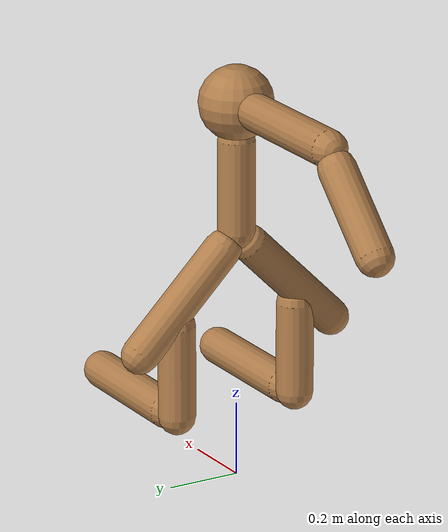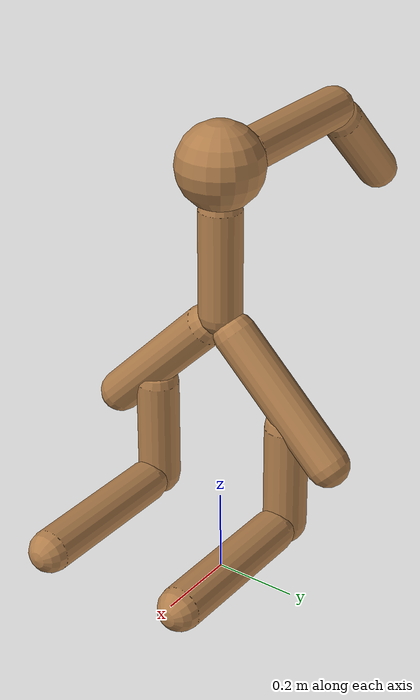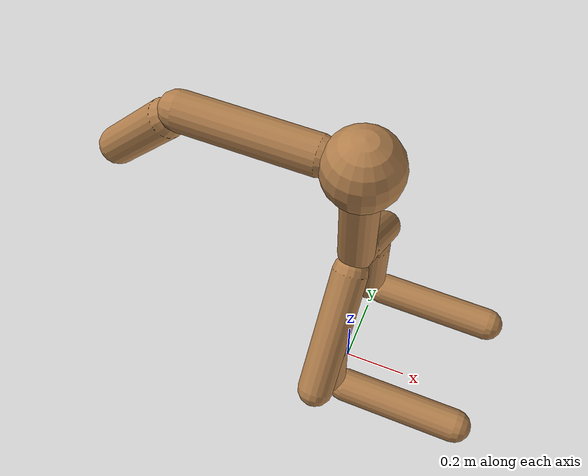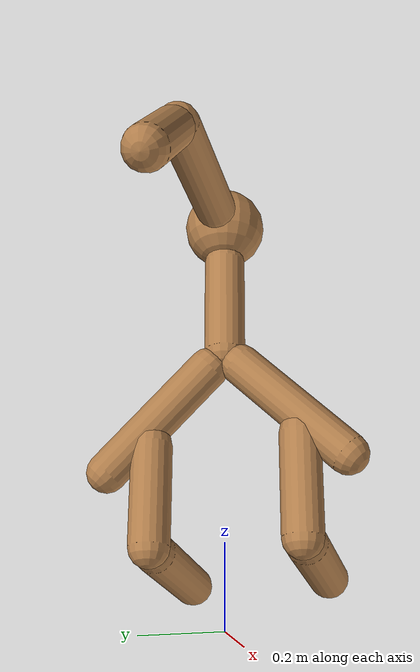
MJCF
<?xml version='1.0' encoding='UTF-8'?>
<!-- Universal Animal Template: unimal -->
<mujoco model="unimal">
  <compiler angle="degree"/>
  <size njmax="2000" nconmax="500"/>
  <option timestep=".005">
    <flag filterparent="disable"/>
  </option>
  <!-- Common defaults to make search space tractable -->
  <default>
    <!-- Define motor defaults -->
    <motor ctrlrange="-1 1" ctrllimited="true"/>
    <!-- Define joint defaults -->
    <default class="normal_joint">
      <joint type="hinge" damping="1" stiffness="1" armature="1" limited="true" range="-120 120" solimplimit="0 0.99 0.01"/>
    </default>
    <default class="walker_joint">
      <joint type="hinge" damping="0.2" stiffness="1" armature=".01" limited="true" range="-120 120" solimplimit="0 0.99 0.01"/>
    </default>
    <default class="stiff_joint">
      <joint type="hinge" damping="5" stiffness="10" armature=".01" limited="true" solimplimit="0 0.99 0.01"/>
    </default>
    <default class="free">
      <joint limited="false" damping="0" armature="0" stiffness="0"/>
    </default>
    <default class="growth_site">
      <site size="1e-6 1e-6 1e-6"/>
    </default>
    <default class="torso_growth_site">
      <site size="1e-6 1e-6 1e-6"/>
    </default>
    <default class="mirror_growth_site">
      <site size="1e-6 1e-6 1e-6"/>
    </default>
    <default class="btm_pos_site">
      <site size="1e-6 1e-6 1e-6"/>
    </default>
    <default class="box_face_site">
      <site size="1e-6 1e-6 1e-6"/>
    </default>
    <default class="imu_vel">
      <site type="box" size="0.05" rgba="1 0 0 0"/>
    </default>
    <default class="touch_site">
      <site group="3" rgba="0 0 1 .3"/>
    </default>
    <default class="food_site">
      <site material="food" size="0.15"/>
    </default>
    <!-- Define geom defaults -->
    <geom type="capsule" condim="3" friction="0.7 0.1 0.1" material="self"/>
  </default>
  <worldbody>
    <light diffuse="1 1 1" directional="true" exponent="1" pos="0 0 8" specular="0.1 0.1 0.1" dir="0 0 -1"/>
    <!-- Programatically generated xml goes here -->
    <body name="torso/0" pos="0 0 1.03">
      <joint name="root" type="free" class="free"/>
      <site name="root" class="imu_vel"/>
      <geom name="torso/0" type="sphere" size="0.1" condim="3" density="1000"/>
      <camera name="side" pos="0 -7 2" xyaxes="1 0 0 0 1 2" mode="trackcom"/>
      <site name="torso/0" class="growth_site" pos="0 0 0"/>
      <site name="torso/btm_pos/0" class="btm_pos_site" pos="0 0 -0.1"/>
      <site name="torso/touch/0" class="touch_site" size="0.11"/>
      <site name="torso/vertical/0" class="torso_growth_site" pos="0 0 -0.1"/>
      <body name="limb/43" pos="-0.1 0.0 0.0">
        <joint name="limby/43" type="hinge" class="normal_joint" range="-30 30" pos="0.05 0.0 0.0" axis="0.0 1.0 0.0"/>
        <geom name="limb/43" type="capsule" fromto="0.0 0.0 0.0 -0.35 0.0 0.0" size="0.05" density="500"/>
        <site name="limb/mid/43" class="growth_site" pos="-0.2 0.0 0.0"/>
        <site name="limb/btm/43" class="growth_site" pos="-0.35 0.0 0.0"/>
        <site name="limb/btm_pos/43" class="btm_pos_site" pos="-0.35 0.0 0.0"/>
        <site name="limb/touch/43" class="touch_site" size="0.060000000000000005" fromto="0.0 0.0 0.0 -0.35 0.0 0.0" type="capsule"/>
        <body name="limb/57" pos="-0.38999999999999996 0.0 -0.04">
          <joint name="limbx/57" type="hinge" class="normal_joint" range="-45 45" pos="0.04 0.0 0.04" axis="0.7071 0.0 -0.7071"/>
          <joint name="limby/57" type="hinge" class="normal_joint" range="-30 60" pos="0.04 0.0 0.04" axis="0.0 1.0 0.0"/>
          <geom name="limb/57" type="capsule" fromto="0.0 0.0 0.0 -0.18 0.0 -0.18" size="0.05" density="500"/>
          <site name="limb/mid/57" class="growth_site" pos="-0.11 0.0 -0.11"/>
          <site name="limb/btm/57" class="growth_site" pos="-0.18 0.0 -0.18"/>
          <site name="limb/btm_pos/57" class="btm_pos_site" pos="-0.21 0.0 -0.21"/>
          <site name="limb/touch/57" class="touch_site" size="0.060000000000000005" fromto="0.0 0.0 0.0 -0.18 0.0 -0.18" type="capsule"/>
        </body>
      </body>
      <body name="limb/54" pos="0.0 0.0 -0.1">
        <joint name="limby/54" type="hinge" class="normal_joint" range="-30 60" pos="0.0 0.0 0.05" axis="0.0 1.0 0.0"/>
        <geom name="limb/54" type="capsule" fromto="0.0 0.0 0.0 0.0 0.0 -0.25" size="0.05" density="500"/>
        <site name="limb/mid/54" class="growth_site" pos="0.0 0.0 -0.15"/>
        <site name="limb/btm/54" class="growth_site" pos="0.0 0.0 -0.25"/>
        <site name="limb/btm_pos/54" class="btm_pos_site" pos="0.0 0.0 -0.25"/>
        <site name="limb/touch/54" class="touch_site" size="0.060000000000000005" fromto="0.0 0.0 0.0 0.0 0.0 -0.25" type="capsule"/>
        <body name="limb/55" pos="0.0 0.04 -0.29">
          <joint name="limby/55" type="hinge" class="normal_joint" range="0 60" pos="0.0 -0.04 0.04" axis="0.0 0.7071 0.7071"/>
          <geom name="limb/55" type="capsule" fromto="0.0 0.0 0.0 0.0 0.25 -0.25" size="0.05" density="500"/>
          <site name="limb/mid/55" class="mirror_growth_site" pos="0.0 0.14 -0.14"/>
          <site name="limb/btm/55" class="mirror_growth_site" pos="0.0 0.25 -0.25"/>
          <site name="limb/btm_pos/55" class="btm_pos_site" pos="0.0 0.25 -0.25"/>
          <site name="limb/touch/55" class="touch_site" size="0.060000000000000005" fromto="0.0 0.0 0.0 0.0 0.25 -0.25" type="capsule"/>
          <body name="limb/58" pos="0.0 0.14 -0.19">
            <joint name="limbx/58" type="hinge" class="normal_joint" range="-60 60" pos="0.0 0.0 0.05" axis="1.0 0.0 0.0"/>
            <joint name="limby/58" type="hinge" class="normal_joint" range="0 60" pos="0.0 0.0 0.05" axis="0.0 1.0 0.0"/>
            <geom name="limb/58" type="capsule" fromto="0.0 0.0 0.0 0.0 0.0 -0.25" size="0.05" density="500"/>
            <site name="limb/mid/58" class="mirror_growth_site" pos="0.0 0.0 -0.15"/>
            <site name="limb/btm/58" class="mirror_growth_site" pos="0.0 0.0 -0.25"/>
            <site name="limb/btm_pos/58" class="btm_pos_site" pos="0.0 0.0 -0.25"/>
            <site name="limb/touch/58" class="touch_site" size="0.060000000000000005" fromto="0.0 0.0 0.0 0.0 0.0 -0.25" type="capsule"/>
            <body name="limb/60" pos="0.05 0.0 -0.25">
              <joint name="limbx/60" type="hinge" class="normal_joint" range="0 60" pos="-0.05 0.0 0.0" axis="0.0 0.0 1.0"/>
              <joint name="limby/60" type="hinge" class="normal_joint" range="-60 60" pos="-0.05 0.0 0.0" axis="-0.0 1.0 0.0"/>
              <geom name="limb/60" type="capsule" fromto="0.0 0.0 0.0 0.35 0.0 0.0" size="0.05" density="500"/>
              <site name="limb/mid/60" class="mirror_growth_site" pos="0.2 0.0 0.0"/>
              <site name="limb/btm/60" class="mirror_growth_site" pos="0.35 0.0 0.0"/>
              <site name="limb/btm_pos/60" class="btm_pos_site" pos="0.4 0.0 0.0"/>
              <site name="limb/touch/60" class="touch_site" size="0.060000000000000005" fromto="0.0 0.0 0.0 0.35 0.0 0.0" type="capsule"/>
            </body>
          </body>
        </body>
        <body name="limb/56" pos="0.0 -0.04 -0.29">
          <joint name="limby/56" type="hinge" class="normal_joint" range="0 60" pos="0.0 0.04 0.04" axis="-0.0 0.7071 -0.7071"/>
          <geom name="limb/56" type="capsule" fromto="0.0 0.0 0.0 0.0 -0.25 -0.25" size="0.05" density="500"/>
          <site name="limb/mid/56" class="mirror_growth_site" pos="0.0 -0.14 -0.14"/>
          <site name="limb/btm/56" class="mirror_growth_site" pos="0.0 -0.25 -0.25"/>
          <site name="limb/btm_pos/56" class="btm_pos_site" pos="0.0 -0.25 -0.25"/>
          <site name="limb/touch/56" class="touch_site" size="0.060000000000000005" fromto="0.0 0.0 0.0 0.0 -0.25 -0.25" type="capsule"/>
          <body name="limb/59" pos="0.0 -0.14 -0.19">
            <joint name="limbx/59" type="hinge" class="normal_joint" range="-60 60" pos="0.0 0.0 0.05" axis="1.0 0.0 0.0"/>
            <joint name="limby/59" type="hinge" class="normal_joint" range="0 60" pos="0.0 0.0 0.05" axis="0.0 1.0 0.0"/>
            <geom name="limb/59" type="capsule" fromto="0.0 0.0 0.0 0.0 0.0 -0.25" size="0.05" density="500"/>
            <site name="limb/mid/59" class="mirror_growth_site" pos="0.0 0.0 -0.15"/>
            <site name="limb/btm/59" class="mirror_growth_site" pos="0.0 0.0 -0.25"/>
            <site name="limb/btm_pos/59" class="btm_pos_site" pos="0.0 0.0 -0.25"/>
            <site name="limb/touch/59" class="touch_site" size="0.060000000000000005" fromto="0.0 0.0 0.0 0.0 0.0 -0.25" type="capsule"/>
            <body name="limb/61" pos="0.05 0.0 -0.25">
              <joint name="limbx/61" type="hinge" class="normal_joint" range="0 60" pos="-0.05 0.0 0.0" axis="0.0 0.0 1.0"/>
              <joint name="limby/61" type="hinge" class="normal_joint" range="-60 60" pos="-0.05 0.0 0.0" axis="-0.0 1.0 0.0"/>
              <geom name="limb/61" type="capsule" fromto="0.0 0.0 0.0 0.35 0.0 0.0" size="0.05" density="500"/>
              <site name="limb/mid/61" class="mirror_growth_site" pos="0.2 0.0 0.0"/>
              <site name="limb/btm/61" class="mirror_growth_site" pos="0.35 0.0 0.0"/>
              <site name="limb/btm_pos/61" class="btm_pos_site" pos="0.4 0.0 0.0"/>
              <site name="limb/touch/61" class="touch_site" size="0.060000000000000005" fromto="0.0 0.0 0.0 0.35 0.0 0.0" type="capsule"/>
            </body>
          </body>
        </body>
      </body>
    </body>
  </worldbody>
  <actuator>
    <motor joint="limby/43" gear="200" name="limby/43"/>
    <motor joint="limbx/57" gear="200" name="limbx/57"/>
    <motor joint="limby/57" gear="250" name="limby/57"/>
    <motor joint="limby/54" gear="200" name="limby/54"/>
    <motor joint="limby/55" gear="300" name="limby/55"/>
    <motor joint="limbx/58" gear="150" name="limbx/58"/>
    <motor joint="limby/58" gear="300" name="limby/58"/>
    <motor joint="limbx/60" gear="200" name="limbx/60"/>
    <motor joint="limby/60" gear="300" name="limby/60"/>
    <motor joint="limby/56" gear="300" name="limby/56"/>
    <motor joint="limbx/59" gear="150" name="limbx/59"/>
    <motor joint="limby/59" gear="300" name="limby/59"/>
    <motor joint="limbx/61" gear="200" name="limbx/61"/>
    <motor joint="limby/61" gear="300" name="limby/61"/>
  </actuator>
  <sensor>
    <accelerometer name="torso_accel" site="root"/>
    <gyro name="torso_gyro" site="root"/>
    <velocimeter name="torso_vel" site="root"/>
    <subtreeangmom name="unimal_am" body="torso/0"/>
    <touch name="torso/0" site="torso/touch/0"/>
    <touch name="limb/43" site="limb/touch/43"/>
    <touch name="limb/57" site="limb/touch/57"/>
    <touch name="limb/54" site="limb/touch/54"/>
    <touch name="limb/55" site="limb/touch/55"/>
    <touch name="limb/58" site="limb/touch/58"/>
    <touch name="limb/60" site="limb/touch/60"/>
    <touch name="limb/56" site="limb/touch/56"/>
    <touch name="limb/59" site="limb/touch/59"/>
    <touch name="limb/61" site="limb/touch/61"/>
  </sensor>
  <!-- Add hfield assets -->
  <asset/>
  <!-- List of contacts to exclude -->
  <contact>
    <exclude name="limb/55:limb/56" body1="limb/55" body2="limb/56"/>
  </contact>
  <!-- Define material, texture etc -->
  <asset>
    <material name="grid" texture="grid" texrepeat="1 1" texuniform="true" reflectance="0.1"/>
    <material name="hfield" texture="hfield" texrepeat="1 1" texuniform="true" reflectance="0.1"/>
    <material name="wall" texture="wall" texrepeat="1 1" texuniform="true" reflectance=".5"/>
    <material name="platform" texture="platform" texrepeat="1 1" texuniform="true" reflectance=".5"/>
    <material name="boundary" texture="boundary" texrepeat="1 1" texuniform="true" reflectance=".5"/>
    <material name="jump" texture="jump" texrepeat="1 1" texuniform="true" reflectance=".5"/>
    <material name="goal" rgba="1 0 0 1"/>
    <material name="food" rgba="0 0 1 1" emission="1"/>
    <material name="init_position" rgba="0 1 0 0.7"/>
    <material name="self" rgba=".7 .5 .3 1"/>
    <material name="self_invisible" rgba=".7 .5 .3 0"/>
    <material name="self_default" rgba=".7 .5 .3 1"/>
    <material name="self_highlight" rgba="0 .5 .3 1"/>
    <material name="effector" rgba=".7 .4 .2 1"/>
    <material name="effector_default" rgba=".7 .4 .2 1"/>
    <material name="effector_highlight" rgba="0 .5 .3 1"/>
    <material name="decoration" rgba=".3 .5 .7 1"/>
    <material name="eye" rgba="0 .2 1 1"/>
    <material name="target" rgba=".6 .3 .3 1"/>
    <material name="target_default" rgba=".6 .3 .3 1"/>
    <material name="target_highlight" rgba=".6 .3 .3 .4"/>
    <material name="site" rgba=".5 .5 .5 .3"/>
    <material name="ball" texture="ball"/>
  </asset>
  <asset>
    <texture name="grid" type="2d" builtin="checker" rgb1="0.4 0.4 0.4" rgb2="0.4 0.4 0.4" width="300" height="300" mark="edge" markrgb="0.2 0.2 0.2"/>
    <texture name="hfield" type="2d" builtin="checker" rgb1="0.4 0.4 0.4" rgb2="0.4 0.4 0.4" width="300" height="300" mark="edge" markrgb="0.2 0.2 0.2"/>
    <texture name="wall" type="2d" builtin="flat" rgb1="0.9 0.7 0" rgb2="0.9 0.7 0" width="300" height="300"/>
    <texture name="platform" type="2d" builtin="flat" rgb1="0.3 0 0.8" rgb2="0.3 0 0.8" width="300" height="300"/>
    <texture name="boundary" type="2d" builtin="flat" rgb1="0.3 0.3 0.3" rgb2="0.3 0.3 0.3" width="300" height="300"/>
    <texture name="jump" type="2d" builtin="flat" rgb1="0.3 0.3 0.3" rgb2="0.3 0.3 0.3" width="300" height="300"/>
    <texture name="skybox" type="skybox" builtin="gradient" rgb1="1 1 1" rgb2="0.6 0.6 0.6" width="800" height="800"/>
    <texture name="ball" builtin="checker" mark="cross" width="151" height="151" rgb1="0.1 0.1 0.1" rgb2="0.9 0.9 0.9" markrgb="1 1 1"/>
  </asset>
  <visual>
    <headlight ambient="0.6 0.6 0.6" diffuse="0.3 0.3 0.3" specular="0 0 0"/>
    <map znear=".01" shadowclip="0.5"/>
    <quality shadowsize="16384"/>
  </visual>
</mujoco>
